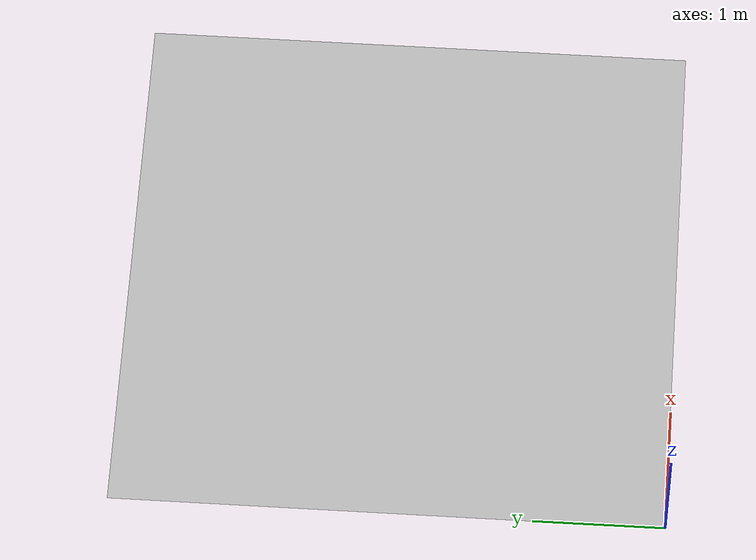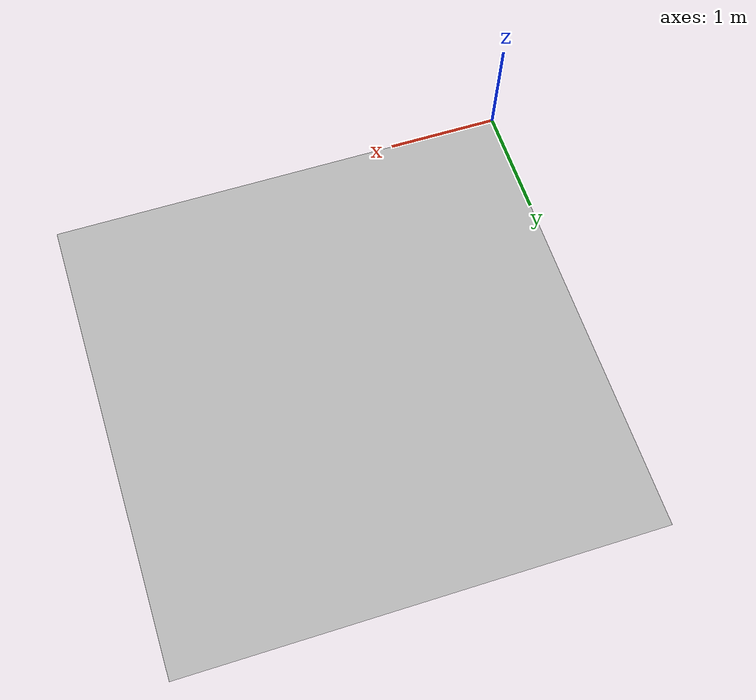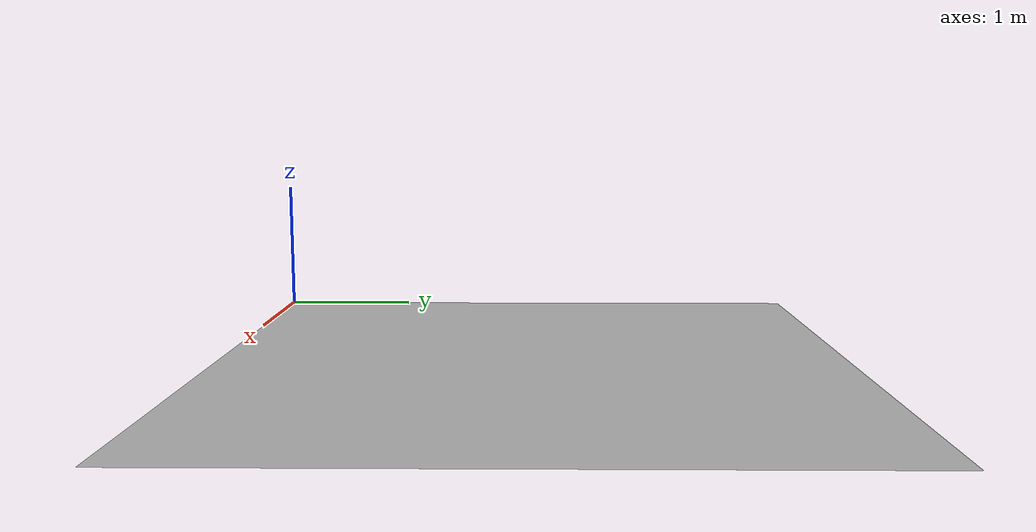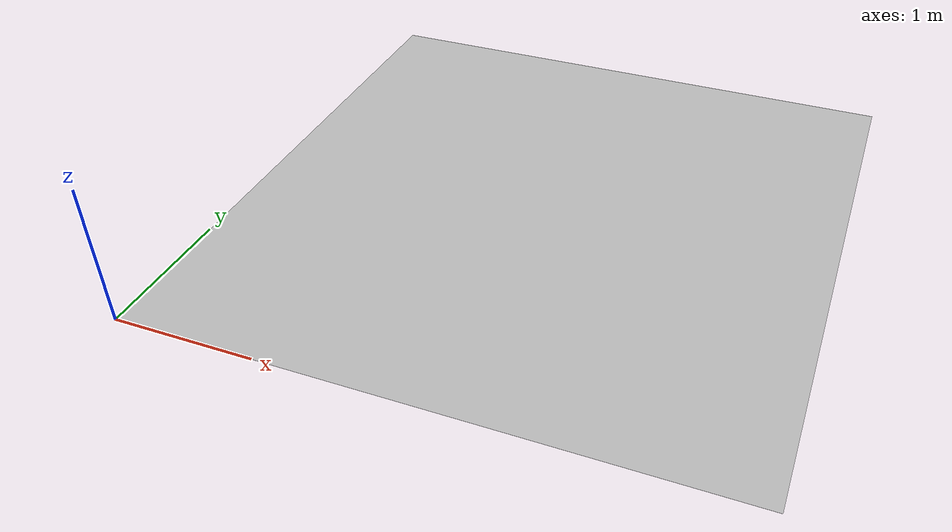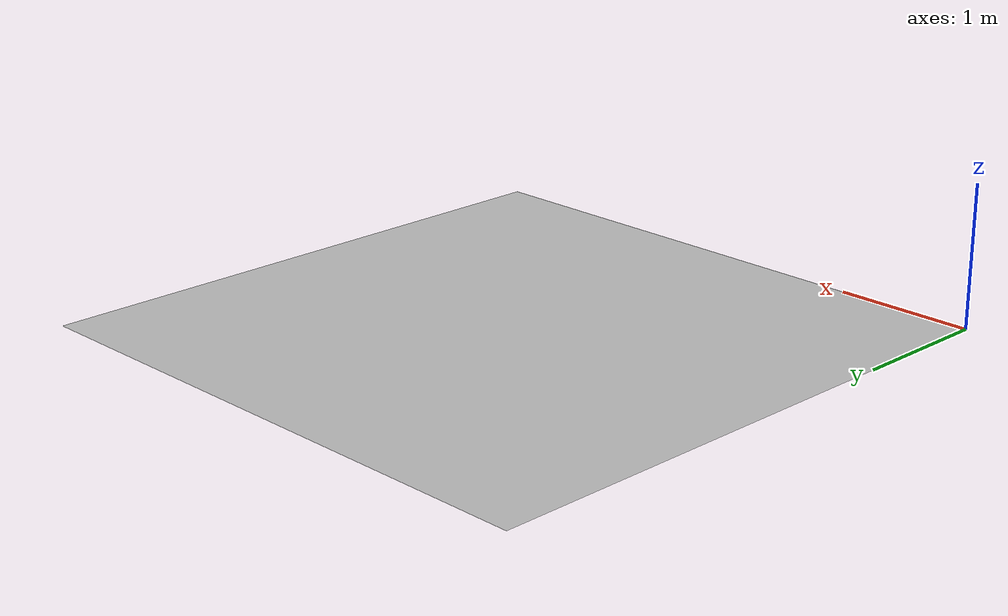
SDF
<?xml version="1.0"?>
<sdf version="1.6"><model name="official_floor"><static>true</static><link name="body">
<visual name="artwork"><geometry><mesh><uri>model://official_floor/meshes/card.dae</uri></mesh></geometry><cast_shadows>false</cast_shadows></visual>
 </link></model></sdf>
